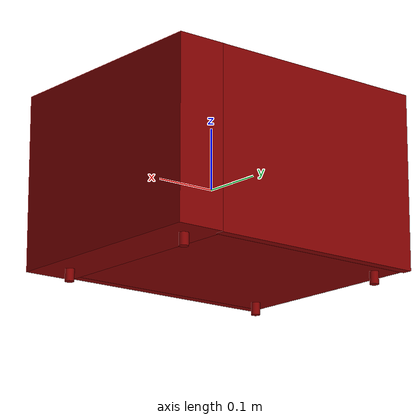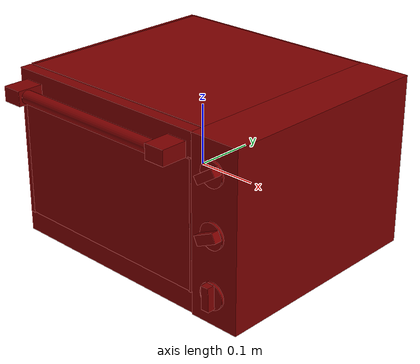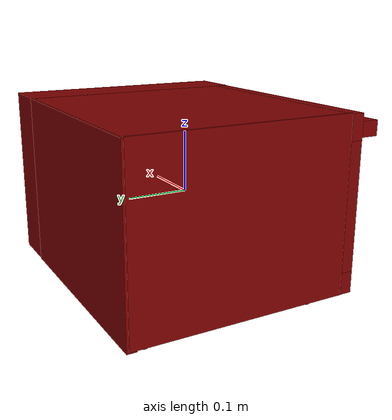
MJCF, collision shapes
<?xml version='1.0' encoding='UTF-8'?>
<mujoco model="model">
  <option timestep="0.002" gravity="0.0 0.0 -9.81"/>
  <compiler angle="radian"/>
  <asset>
    <mesh file="visuals/Body001.obj" name="Body001_vis"/>
    <mesh file="visuals/Container001.obj" name="Container001_vis"/>
    <mesh file="visuals/Door001.obj" name="Door001_vis"/>
    <mesh file="visuals/Door001_Clear.obj" name="Door001_Clear_vis"/>
    <mesh file="visuals/Knob001.obj" name="Knob001_vis"/>
    <mesh file="visuals/Knob002.obj" name="Knob002_vis"/>
    <mesh file="visuals/Knob003.obj" name="Knob003_vis"/>
    <texture file="visuals/T_BC001.png" name="Body001_material" type="2d"/>
    <material name="Body001_material" rgba="1 1 1 1.0" texture="Body001_material" shininess="0.06" specular="3"/>
    <texture file="visuals/T_BC001.png" name="Container001_material" type="2d"/>
    <material name="Container001_material" rgba="1 1 1 1.0" texture="Container001_material" shininess="-1023.0" specular="1"/>
    <texture file="visuals/T_BC001.png" name="Door001_material" type="2d"/>
    <material name="Door001_material" rgba="1 1 1 1.0" texture="Door001_material" shininess="0.05" specular="3"/>
    <texture file="visuals/T_BC001.png" name="Door001_Clear_material" type="2d"/>
    <material name="Door001_Clear_material" rgba="1 1 1 0.800000011920929" texture="Door001_Clear_material" shininess="0.5" specular="2"/>
    <texture file="visuals/T_BC001.png" name="Knob001_material" type="2d"/>
    <material name="Knob001_material" rgba="1 1 1 1.0" texture="Knob001_material" shininess="-1023.0" specular="1"/>
    <texture file="visuals/T_BC001.png" name="Knob002_material" type="2d"/>
    <material name="Knob002_material" rgba="1 1 1 1.0" texture="Knob002_material" shininess="-1023.0" specular="1"/>
    <texture file="visuals/T_BC001.png" name="Knob003_material" type="2d"/>
    <material name="Knob003_material" rgba="1 1 1 1.0" texture="Knob003_material" shininess="-1023.0" specular="1"/>
  </asset>
  <default>
    <default class="visual">
      <geom conaffinity="0" contype="0" group="1" type="mesh"/>
    </default>
    <default class="collision">
      <geom group="0" rgba="0.5 0 0 0.5"/>
    </default>
    <default class="spawn">
      <geom group="0" rgba="1 1 1 0.5" contype="0" conaffinity="0"/>
      <site group="0" rgba="1 1 1 0.5"/>
    </default>
    <default class="region">
      <geom group="1" conaffinity="0" contype="0" rgba="0 1 0 0"/>
    </default>
  </default>
  <worldbody>
    <body>
      <body name="object">
        <geom mesh="Body001_vis" type="mesh" solimp="0.998 0.998 0.001" solref="0.001 1" friction="0.95 0.3 0.1" class="visual" material="Body001_material"/>
        <geom class="collision" type="box" pos="0.000000 0.028434 0.147356" size="0.22226327657699585 0.17692340910434723 0.002307768212631345" quat="1.0 0.0 0.0 0.0" density="1000.0"/>
        <geom class="collision" type="box" pos="-0.222352 0.027658 0.009171" size="0.002376146847382188 0.17769907414913177 0.1415046900510788" quat="1.0 0.0 0.0 0.0" density="1000.0"/>
        <geom class="collision" type="box" pos="-0.039122 0.027813 -0.128026" size="0.1831410676240921 0.1775444597005844 0.004880670458078384" quat="1.0 0.0 0.0 0.0" density="1000.0"/>
        <geom class="collision" type="box" pos="0.184608 0.018968 0.008059" size="0.041946861892938614 0.19013306498527527 0.14168821275234222" quat="1.0 0.0 0.0 0.0" density="1000.0"/>
        <geom class="collision" type="box" pos="-0.037871 0.201311 0.007574" size="0.18628650903701782 0.007928892970085144 0.14193518459796906" quat="1.0 0.0 0.0 0.0" density="1000.0"/>
        <geom class="collision" type="box" pos="-0.213566 0.021214 0.083556" size="0.0073495591059327126 0.1532711535692215 0.02180192805826664" quat="1.0 0.0 0.0 0.0" density="1000.0"/>
        <geom class="collision" type="box" pos="-0.213566 0.021214 0.013017" size="0.007349562365561724 0.15327121317386627 0.02180192805826664" quat="1.0 0.0 0.0 0.0" density="1000.0"/>
        <geom class="collision" type="box" pos="-0.213504 0.021214 -0.060904" size="0.0073495651595294476 0.15327127277851105 0.016088787466287613" quat="1.0 0.0 0.0 0.0" density="1000.0"/>
        <geom class="collision" type="box" pos="-0.213460 0.021214 -0.099720" size="0.00734958378598094 0.1532716602087021 0.007678505498915911" quat="1.0 0.0 0.0 0.0" density="1000.0"/>
        <geom class="collision" type="box" pos="0.135294 0.021214 0.083556" size="0.00734957167878747 0.1532714068889618 0.02180192805826664" quat="1.0 0.0 0.0 0.0" density="1000.0"/>
        <geom class="collision" type="box" pos="0.135294 0.021214 0.013017" size="0.007349574472755194 0.15327146649360657 0.02180192805826664" quat="1.0 0.0 0.0 0.0" density="1000.0"/>
        <geom class="collision" type="box" pos="0.135294 0.021214 -0.060293" size="0.007349577732384205 0.15327152609825134 0.016088787466287613" quat="1.0 0.0 0.0 0.0" density="1000.0"/>
        <geom class="collision" type="box" pos="0.135294 0.021214 -0.099720" size="0.00734958378598094 0.1532716602087021 0.007678479887545109" quat="1.0 0.0 0.0 0.0" density="1000.0"/>
        <geom class="collision" type="cylinder" pos="0.185915 -0.113208 -0.141947" size="0.007252910640090704 0.011195434257388115" quat="1.0 0.0 0.0 0.0" density="1000.0"/>
        <geom class="collision" type="cylinder" pos="0.185915 0.167113 -0.141947" size="0.007252910640090704 0.011195434257388115" quat="1.0 0.0 0.0 0.0" density="1000.0"/>
        <geom class="collision" type="cylinder" pos="-0.186334 -0.113208 -0.141947" size="0.007252910640090704 0.011195434257388115" quat="1.0 0.0 0.0 0.0" density="1000.0"/>
        <geom class="collision" type="cylinder" pos="-0.186334 0.167113 -0.141947" size="0.007252910640090704 0.011195434257388115" quat="1.0 0.0 0.0 0.0" density="1000.0"/>
        <body name="Container001">
          <joint axis="0.0 -1.0 0.0" pos="-0.037852 0.025926 -0.044145" limited="true" name="Container001_joint" range="0.0 0.3" type="slide" damping="1" frictionloss="1" armature=".01" stiffness="0.05"/>
          <geom mesh="Container001_vis" type="mesh" solimp="0.998 0.998 0.001" solref="0.001 1" friction="0.95 0.3 0.1" class="visual" material="Container001_material"/>
          <geom class="collision" type="box" pos="-0.037741 0.024566 -0.041272" size="0.17955459654331207 0.15341126918792725 0.0021305540576577187" quat="1.0 0.0 0.0 0.0" density="1000.0"/>
        </body>
        <body name="Door001">
          <joint axis="1.0 0.0 0.0" pos="-0.041163 -0.159901 -0.131130" limited="true" name="Door001_joint" range="0.0 1.5707963267948966" type="hinge" damping="1" frictionloss="1" armature=".01" stiffness="1" springref="-1"/>
          <geom mesh="Door001_vis" type="mesh" solimp="0.998 0.998 0.001" solref="0.001 1" friction="0.95 0.3 0.1" class="visual" material="Door001_material"/>
          <geom class="collision" type="cylinder" pos="-0.039224 -0.197697 0.120749" size="0.010780886746942997 0.13879255950450897" quat="0.7071041464805603 0.0 0.7071093916893005 0.0" density="1000.0"/>
          <geom class="collision" type="box" pos="-0.041500 -0.160600 0.129109" size="0.1834297478199005 0.009900390170514584 0.020225420594215393" quat="1.0 0.0 0.0 0.0" density="1000.0"/>
          <geom class="collision" type="box" pos="-0.041500 -0.160339 -0.114174" size="0.1834297478199005 0.009900390170514584 0.017764845862984657" quat="1.0 0.0 0.0 0.0" density="1000.0"/>
          <geom class="collision" type="box" pos="-0.219500 -0.160518 0.005980" size="0.005070543847978115 0.010078820399940014 0.1051846370100975" quat="1.0 0.0 0.0 0.0" density="1000.0"/>
          <geom class="collision" type="box" pos="0.138668 -0.160654 0.005980" size="0.0029717874713242054 0.010078816674649715 0.1051846370100975" quat="1.0 0.0 0.0 0.0" density="1000.0"/>
          <geom class="collision" type="box" pos="-0.205954 -0.164588 -0.089829" size="0.010297520086169243 0.004874586593359709 0.0023025553673505783" quat="0.8851215839385986 -3.1262590738379004e-08 0.46535980701446533 3.063234776945478e-09" density="1000.0"/>
          <geom class="collision" type="box" pos="-0.209496 -0.164494 -0.092046" size="0.005653149913996458 0.004874586593359709 0.004447008948773146" quat="1.0 0.0 0.0 0.0" density="1000.0"/>
          <geom class="collision" type="box" pos="-0.212375 -0.164494 -0.085183" size="0.0020806142129004 0.004794861655682325 0.0025254550855606794" quat="1.0 0.0 0.0 0.0" density="1000.0"/>
          <geom class="collision" type="box" pos="-0.193031 -0.191928 0.121075" size="0.017400218173861504 0.02154410444200039 0.012220114469528198" quat="1.0 0.0 0.0 0.0" density="1000.0"/>
          <geom class="collision" type="box" pos="0.114802 -0.191928 0.121075" size="0.017400233075022697 0.02154410444200039 0.012220124714076519" quat="1.0 0.0 0.0 0.0" density="1000.0"/>
          <body name="Door001_Clear">
            <geom mesh="Door001_Clear_vis" type="mesh" solimp="0.998 0.998 0.001" solref="0.001 1" friction="0.95 0.3 0.1" class="visual" material="Door001_Clear_material"/>
            <geom class="collision" type="box" pos="-0.038819 -0.166672 0.005546" size="0.17705252766609192 0.004127188585698605 0.10301849991083145" quat="1.0 0.0 0.0 0.0" density="1000.0"/>
          </body>
        </body>
        <body name="Knob001">
          <joint axis="0.0 1.0 0.0" pos="0.184197 -0.172117 0.102559" limited="true" name="Knob001_joint" range="0.0 4.363323129985823" type="hinge" damping="0.05" armature="0.001"/>
          <geom mesh="Knob001_vis" type="mesh" solimp="0.998 0.998 0.001" solref="0.001 1" friction="0.95 0.3 0.1" class="visual" material="Knob001_material"/>
          <geom class="collision" type="box" pos="0.183321 -0.182509 0.102770" size="0.006663522683084011 0.018878944218158722 0.006429621484130621" quat="0.33565554022789 -0.33565548062324524 -0.6223627924919128 -0.6223626732826233" density="1000.0"/>
          <geom class="collision" type="cylinder" pos="0.183958 -0.174502 0.102660" size="0.020145408809185028 0.0018774380441755056" quat="0.7071067094802856 0.7071068286895752 0.0 0.0" density="1000.0"/>
        </body>
        <body name="Knob002">
          <joint axis="0.0 1.0 0.0" pos="0.184362 -0.172117 0.010163" limited="true" name="Knob002_joint" range="0.0 4.014257279586958" type="hinge" damping="0.05" armature="0.001"/>
          <geom mesh="Knob002_vis" type="mesh" solimp="0.998 0.998 0.001" solref="0.001 1" friction="0.95 0.3 0.1" class="visual" material="Knob002_material"/>
          <geom class="collision" type="box" pos="0.184082 -0.182482 0.009799" size="0.007658299989998341 0.01840347796678543 0.006463090423494577" quat="0.37859827280044556 -0.37859830260276794 -0.5972129702568054 -0.5972129702568054" density="1000.0"/>
          <geom class="collision" type="cylinder" pos="0.184266 -0.174478 0.009997" size="0.02063790149986744 0.001923335250467062" quat="0.7071067094802856 0.7071068286895752 0.0 0.0" density="1000.0"/>
        </body>
        <body name="Knob003">
          <joint axis="0.0 1.0 0.0" pos="0.184362 -0.172117 -0.083638" limited="true" name="Knob003_joint" range="0.0 4.014257279586958" type="hinge" damping="0.05" armature="0.001"/>
          <geom mesh="Knob003_vis" type="mesh" solimp="0.998 0.998 0.001" solref="0.001 1" friction="0.95 0.3 0.1" class="visual" material="Knob003_material"/>
          <geom class="collision" type="box" pos="0.184054 -0.182225 -0.083403" size="0.006776513531804085 0.006262445822358131 0.01877010613679886" quat="0.9998572468757629 1.6352539617610112e-15 -0.016894804313778877 -2.269967769308323e-09" density="1000.0"/>
          <geom class="collision" type="cylinder" pos="0.184210 -0.174391 -0.084175" size="0.02104904316365719 0.0019616514910012484" quat="0.7071067094802856 0.7071068286895752 0.0 0.0" density="1000.0"/>
        </body>
        <geom class="region" name="reg_int" type="box" pos="-0.0389685 0.025092000000000003 0.010527999999999996" size="0.18109750000000002 0.174465 0.133944"/>
        <geom class="region" name="reg_main" type="box" pos="0.0 0.021214499999999997 0.0" size="0.2275 0.1934615 0.1525"/>
      </body>
    </body>
  </worldbody>
  <actuator>
    <motor name="Container001_joint_actuator" joint="Container001_joint" gear="10"/>
    <motor name="Door001_joint_actuator" joint="Door001_joint" gear="50"/>
    <motor name="Knob001_joint_actuator" joint="Knob001_joint" gear="50"/>
    <motor name="Knob002_joint_actuator" joint="Knob002_joint" gear="50"/>
    <motor name="Knob003_joint_actuator" joint="Knob003_joint" gear="50"/>
  </actuator>
</mujoco>
